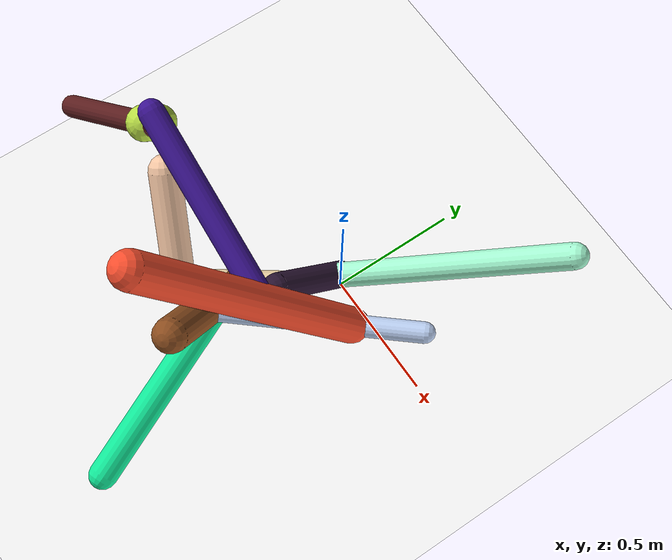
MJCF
<mujoco model="morphology">
  <option timestep="0.01"/>
  <default>
    <default class="/"/>
    <default class="0/"/>
    <default class="0/1/"/>
    <default class="0/2/"/>
    <default class="0/2/3/"/>
    <default class="0/2/4/"/>
    <default class="0/2/4/5/"/>
    <default class="0/2/4/6/"/>
    <default class="0/2/4/6/7/"/>
    <default class="0/2/4/6/7/8/"/>
    <default class="0/2/4/6/7/8/9/"/>
    <default class="0/2/4/6/7/8/9/10/"/>
  </default>
  <asset>
    <texture name="texplane" type="2d" builtin="checker" rgb1="0.10000000000000001 0.20000000000000001 0.29999999999999999" rgb2="0.20000000000000001 0.29999999999999999 0.40000000000000002" width="300" height="300"/>
    <material name="MatPlane" class="/" texture="texplane" texrepeat="20 20" specular="1" shininess="1" reflectance="0.5"/>
  </asset>
  <worldbody>
    <light name="//unnamed_light_0" class="/" directional="true" pos="0 0 1.5" dir="0 0 -1.3" cutoff="100" exponent="1" diffuse="1 1 1" specular="0.10000000000000001 0.10000000000000001 0.10000000000000001"/>
    <geom name="ground" class="/" type="plane" size="15 15 0.5" material="MatPlane" rgba="1 1 1 1"/>
    <site name="body" class="/" size="9.9999999999999995e-07 9.9999999999999995e-07 9.9999999999999995e-07" pos="0 0 0.10000000000000001"/>
    <body pos="0 0 0.10000000000000001" name="0/">
      <freejoint name="0/"/>
      <geom name="0/geom" class="0/" type="capsule" contype="1" conaffinity="1" condim="3" size="0.051947668119962043" rgba="0.17008995358205847 0.086740348510780163 0.20043783536801252 1" friction="0.59999999999999998 0.10000000000000001 0.10000000000000001" fromto="0 0 0 -0.015124879015189663 -0.2741727664000243 0.21592200323721134"/>
      <site name="0/end0" class="0/" size="0.0050000000000000001" pos="-0.015124879015189663 -0.2741727664000243 0.21592200323721134"/>
      <site name="0/attach1" class="0/" size="9.9999999999999995e-07 9.9999999999999995e-07 9.9999999999999995e-07" pos="-0.0014429367085019911 -0.0261565033818008 0.020599291031112497"/>
      <body pos="-0.0014429367085019911 -0.0261565033818008 0.020599291031112497" name="0/1/">
        <joint name="0/1/joint/" class="0/" type="hinge" axis="0 0 1" limited="true" range="-38.945167168469467 38.945167168469467"/>
        <geom name="0/1/geom" class="0/1/" type="capsule" contype="1" conaffinity="1" condim="3" size="0.047547189934321929" rgba="0.65490491302895359 0.9993291647498127 0.83727817759508272 1" friction="0.59999999999999998 0.10000000000000001 0.10000000000000001" fromto="0 0 0 0.56936086223393989 0.57127187923443001 0.5186810532045214"/>
        <site name="0/1/end1" class="0/1/" size="0.0050000000000000001" pos="0.56936086223393989 0.57127187923443001 0.5186810532045214"/>
      </body>
      <site name="0/attach2" class="0/" size="9.9999999999999995e-07 9.9999999999999995e-07 9.9999999999999995e-07" pos="-0.009325881156072139 -0.16905276618148818 0.13313580486488313"/>
      <body pos="-0.009325881156072139 -0.16905276618148818 0.13313580486488313" name="0/2/">
        <geom name="0/2/geom" class="0/2/" type="capsule" contype="1" conaffinity="1" condim="3" size="0.040273981876545996" rgba="0.90570183000098181 0.80530982773710724 0.63060642469439665 1" friction="0.59999999999999998 0.10000000000000001 0.10000000000000001" fromto="0 0 0 -0.42801313072803387 -0.51139404775834407 -0.1231489523255499"/>
        <site name="0/2/end2" class="0/2/" size="0.0050000000000000001" pos="-0.42801313072803387 -0.51139404775834407 -0.1231489523255499"/>
        <site name="0/2/attach3" class="0/2/" size="9.9999999999999995e-07 9.9999999999999995e-07 9.9999999999999995e-07" pos="-0.29761666015210597 -0.35559513853376329 -0.085630970783580493"/>
        <body pos="-0.29761666015210597 -0.35559513853376329 -0.085630970783580493" name="0/2/3/">
          <geom name="0/2/3/geom" class="0/2/3/" type="capsule" contype="1" conaffinity="1" condim="3" size="0.060613769204168728" rgba="0.97730961655021098 0.79524015453033947 0.65959582507271697 1" friction="0.59999999999999998 0.10000000000000001 0.10000000000000001" fromto="0 0 0 -0.271627779624253 0.1377616393265455 0.29531815028145925"/>
          <site name="0/2/3/end3" class="0/2/3/" size="0.0050000000000000001" pos="-0.271627779624253 0.1377616393265455 0.29531815028145925"/>
        </body>
        <site name="0/2/attach4" class="0/2/" size="9.9999999999999995e-07 9.9999999999999995e-07 9.9999999999999995e-07" pos="-0.13912921473594334 -0.16623287272572865 -0.040030587387504341"/>
        <body pos="-0.13912921473594334 -0.16623287272572865 -0.040030587387504341" name="0/2/4/">
          <joint name="0/2/4/joint/" class="0/2/" type="hinge" axis="2.7755575615628914e-17 -0.23411775640190127 0.97220824730987543" limited="true" range="-67.130722155939281 67.130722155939281"/>
          <geom name="0/2/4/geom" class="0/2/4/" type="capsule" contype="1" conaffinity="1" condim="3" size="0.062375322524543406" rgba="0.56803803311293299 0.31531441273933047 0.12881389796459819 1" friction="0.59999999999999998 0.10000000000000001 0.10000000000000001" fromto="0 0 0 0.1977873375023208 -0.38780542039387633 0.45019635368044231"/>
          <site name="0/2/4/end4" class="0/2/4/" size="0.0050000000000000001" pos="0.1977873375023208 -0.38780542039387633 0.45019635368044231"/>
          <site name="0/2/4/attach5" class="0/2/4/" size="9.9999999999999995e-07 9.9999999999999995e-07 9.9999999999999995e-07" pos="0.063847530050916035 -0.12518707489156433 0.1453274288607459"/>
          <body pos="0.063847530050916035 -0.12518707489156433 0.1453274288607459" name="0/2/4/5/">
            <joint name="0/2/4/5/joint/" class="0/2/4/" type="hinge" axis="0.94881650821474739 0.20612659004345923 -0.23928865960640427" limited="true" range="-62.365794479512601 62.365794479512601"/>
            <geom name="0/2/4/5/geom" class="0/2/4/5/" type="capsule" contype="1" conaffinity="1" condim="3" size="0.051613249903198627" rgba="0.064829656524055368 0.92633863569160035 0.61141433399122169 1" friction="0.59999999999999998 0.10000000000000001 0.10000000000000001" fromto="0 0 0 0.26766560494311964 -0.67883645491163369 -0.17070767819232846"/>
            <site name="0/2/4/5/end5" class="0/2/4/5/" size="0.0050000000000000001" pos="0.26766560494311964 -0.67883645491163369 -0.17070767819232846"/>
          </body>
          <site name="0/2/4/attach6" class="0/2/4/" size="9.9999999999999995e-07 9.9999999999999995e-07 9.9999999999999995e-07" pos="0.11197998170427992 -0.21956129461532034 0.25488476706896329"/>
          <body pos="0.11197998170427992 -0.21956129461532034 0.25488476706896329" name="0/2/4/6/">
            <joint name="0/2/4/6/joint/" class="0/2/4/" type="hinge" axis="0.94881650821474739 0.20612659004345923 -0.23928865960640427" limited="true" range="-32.387324655436423 32.387324655436423"/>
            <geom name="0/2/4/6/geom" class="0/2/4/6/" type="capsule" contype="1" conaffinity="1" condim="3" size="0.037607145795378813" rgba="0.76564882075850516 0.85018267906095313 0.99003804888002156 1" friction="0.59999999999999998 0.10000000000000001 0.10000000000000001" fromto="0 0 0 0.50287907196268655 0.56639528890529278 0.037499454228937301"/>
            <site name="0/2/4/6/end6" class="0/2/4/6/" size="0.0050000000000000001" pos="0.50287907196268655 0.56639528890529278 0.037499454228937301"/>
            <site name="0/2/4/6/attach7" class="0/2/4/6/" size="9.9999999999999995e-07 9.9999999999999995e-07 9.9999999999999995e-07" pos="0.3373215769884832 0.37992702958725888 0.025153910237988894"/>
            <body pos="0.3373215769884832 0.37992702958725888 0.025153910237988894" name="0/2/4/6/7/">
              <joint name="0/2/4/6/7/joint/" class="0/2/4/6/" type="hinge" axis="-0.74851200542800855 0.66167263846103475 0.043807502121824035" limited="true" range="-51.042755028630928 51.042755028630928"/>
              <geom name="0/2/4/6/7/geom" class="0/2/4/6/7/" type="capsule" contype="1" conaffinity="1" condim="3" size="0.063485759345504711" rgba="0.99369893431799328 0.31533687040264258 0.18542702936454603 1" friction="0.59999999999999998 0.10000000000000001 0.10000000000000001" fromto="0 0 0 -0.26801149792076012 -0.60414206198473464 0.74768021726471012"/>
              <site name="0/2/4/6/7/end7" class="0/2/4/6/7/" size="0.0050000000000000001" pos="-0.26801149792076012 -0.60414206198473464 0.74768021726471012"/>
              <site name="0/2/4/6/7/attach8" class="0/2/4/6/7/" size="9.9999999999999995e-07 9.9999999999999995e-07 9.9999999999999995e-07" pos="-0.11791138556888238 -0.26579168491540983 0.32894115015240966"/>
              <body pos="-0.11791138556888238 -0.26579168491540983 0.32894115015240966" name="0/2/4/6/7/8/">
                <joint name="0/2/4/6/7/8/joint/" class="0/2/4/6/7/" type="hinge" axis="0 0.77781581580368608 0.62849228848542493" limited="true" range="-59.394895785121463 59.394895785121463"/>
                <geom name="0/2/4/6/7/8/geom" class="0/2/4/6/7/8/" type="capsule" contype="1" conaffinity="1" condim="3" size="0.044590788661464487" rgba="0.24309551689514686 0.082245804832438263 0.58858535188126071 1" friction="0.59999999999999998 0.10000000000000001 0.10000000000000001" fromto="0 0 0 -0.64565018095165416 0.014379675073345033 0.25353967290647206"/>
                <site name="0/2/4/6/7/8/end8" class="0/2/4/6/7/8/" size="0.0050000000000000001" pos="-0.64565018095165416 0.014379675073345033 0.25353967290647206"/>
                <site name="0/2/4/6/7/8/attach9" class="0/2/4/6/7/8/" size="9.9999999999999995e-07 9.9999999999999995e-07 9.9999999999999995e-07" pos="-0.59741050408975371 0.013305299351967777 0.23459648624980173"/>
                <body pos="-0.59741050408975371 0.013305299351967777 0.23459648624980173" name="0/2/4/6/7/8/9/">
                  <joint name="0/2/4/6/7/8/9/joint/" class="0/2/4/6/7/8/" type="hinge" axis="-0.36602548096376902 -0.05269520265289538 -0.92911170636399354" limited="true" range="-69.064796551833879 69.064796551833879"/>
                  <geom name="0/2/4/6/7/8/9/geom" class="0/2/4/6/7/8/9/" type="capsule" contype="1" conaffinity="1" condim="3" size="0.038340657540722071" rgba="0.36664928132420138 0.12032409957356183 0.12617374655951019 1" friction="0.59999999999999998 0.10000000000000001 0.10000000000000001" fromto="0 0 0 -0.37687471438626746 -0.14897727932940097 -0.25832774556499788"/>
                  <site name="0/2/4/6/7/8/9/end9" class="0/2/4/6/7/8/9/" size="0.0050000000000000001" pos="-0.37687471438626746 -0.14897727932940097 -0.25832774556499788"/>
                  <site name="0/2/4/6/7/8/9/attach10" class="0/2/4/6/7/8/9/" size="9.9999999999999995e-07 9.9999999999999995e-07 9.9999999999999995e-07" pos="-0.064709661012602004 -0.025579506599916715 -0.04435506073386445"/>
                  <body pos="-0.064709661012602004 -0.025579506599916715 -0.04435506073386445" name="0/2/4/6/7/8/9/10/">
                    <joint name="0/2/4/6/7/8/9/10/joint/" class="0/2/4/6/7/8/9/" type="hinge" axis="5.5511151231257827e-17 -0.8662697014708145 0.49957662506733286" limited="true" range="-60.670800738790334 60.670800738790334"/>
                    <geom name="0/2/4/6/7/8/9/10/geom" class="0/2/4/6/7/8/9/10/" type="capsule" contype="1" conaffinity="1" condim="3" size="0.059768906012667752" rgba="0.7493276809354068 0.89542763707783168 0.28312483415490663 1" friction="0.59999999999999998 0.10000000000000001 0.10000000000000001" fromto="0 0 0 -0.10208297780189968 0.091487822954094522 -0.22671658450186682"/>
                    <site name="0/2/4/6/7/8/9/10/end10" class="0/2/4/6/7/8/9/10/" size="0.0050000000000000001" pos="-0.10208297780189968 0.091487822954094522 -0.22671658450186682"/>
                  </body>
                </body>
              </body>
            </body>
          </body>
        </body>
      </body>
      <camera name="0/iso" class="0/" mode="trackcom" pos="-2.2999999999999998 -2.2999999999999998 1" xyaxes="0.45000000000000001 -0.45000000000000001 0 0.29999999999999999 0.14999999999999999 0.93999999999999995"/>
    </body>
  </worldbody>
  <actuator>
    <motor name="0/1/motor" class="0/1/" ctrllimited="true" ctrlrange="-1 1" gear="82" joint="0/1/joint/"/>
    <motor name="0/2/4/motor" class="0/2/4/" ctrllimited="true" ctrlrange="-1 1" gear="56" joint="0/2/4/joint/"/>
    <motor name="0/2/4/5/motor" class="0/2/4/5/" ctrllimited="true" ctrlrange="-1 1" gear="84" joint="0/2/4/5/joint/"/>
    <motor name="0/2/4/6/motor" class="0/2/4/6/" ctrllimited="true" ctrlrange="-1 1" gear="64" joint="0/2/4/6/joint/"/>
    <motor name="0/2/4/6/7/motor" class="0/2/4/6/7/" ctrllimited="true" ctrlrange="-1 1" gear="90" joint="0/2/4/6/7/joint/"/>
    <motor name="0/2/4/6/7/8/motor" class="0/2/4/6/7/8/" ctrllimited="true" ctrlrange="-1 1" gear="76" joint="0/2/4/6/7/8/joint/"/>
    <motor name="0/2/4/6/7/8/9/motor" class="0/2/4/6/7/8/9/" ctrllimited="true" ctrlrange="-1 1" gear="91" joint="0/2/4/6/7/8/9/joint/"/>
    <motor name="0/2/4/6/7/8/9/10/motor" class="0/2/4/6/7/8/9/10/" ctrllimited="true" ctrlrange="-1 1" gear="99" joint="0/2/4/6/7/8/9/10/joint/"/>
  </actuator>
  <sensor>
    <subtreelinvel name="velocity" body="0/"/>
  </sensor>
</mujoco>
